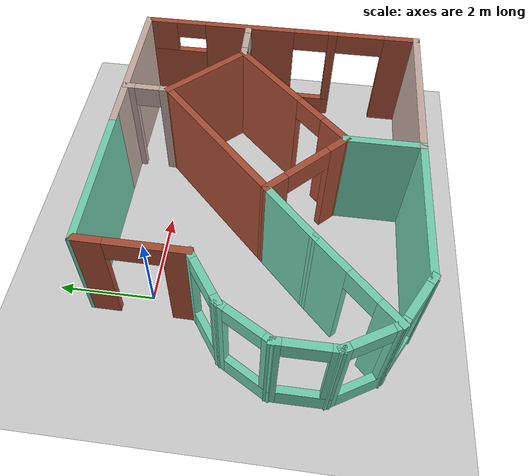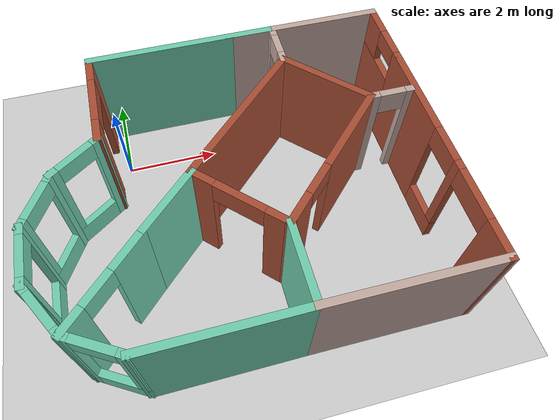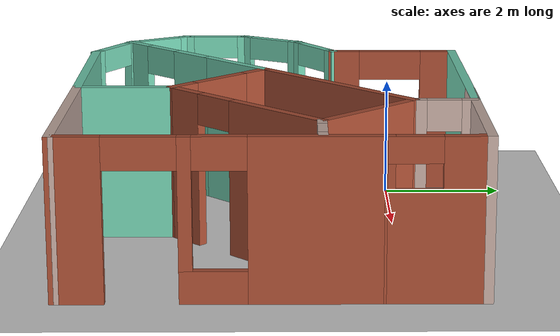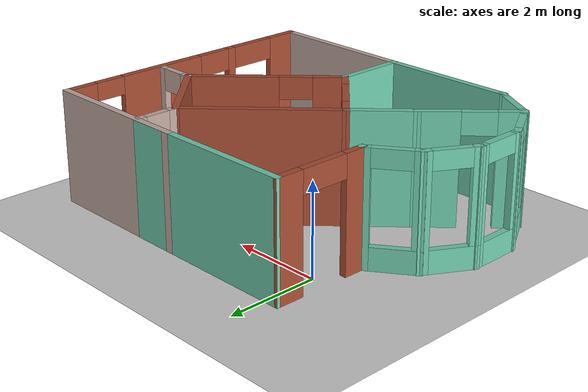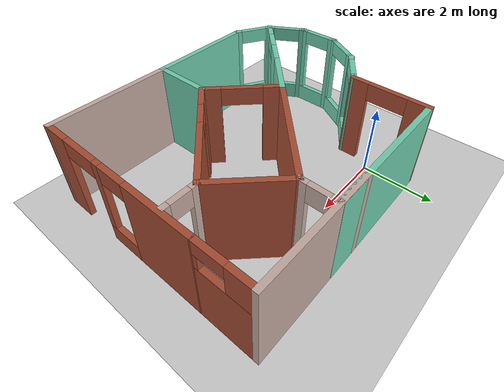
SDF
<sdf version="1.6">
 <world name="default">
  <light name="sun" type="directional">
   <pose>0 0 10 0 -0 0</pose>
   <diffuse>0.8 0.8 0.8 1</diffuse>
   <specular>0.2 0.2 0.2 1</specular>
   <attenuation>
    <range>1000</range>
    <constant>0.9</constant>
    <linear>0.01</linear>
    <quadratic>0.001</quadratic>
   </attenuation>
   <direction>-0.5 0.1 -0.9</direction>
  </light>
  <model name="ground_plane">
   <static>1</static>
   <link name="link">
    <collision name="collision">
     <geometry><plane><normal>0 0 1</normal><size>100 100</size></plane></geometry>
     <surface>
      <contact><collide_bitmask>65535</collide_bitmask></contact>
      <friction><ode><mu>100</mu><mu2>50</mu2></ode></friction>
     </surface>
    </collision>
    <visual name="visual">
     <cast_shadows>0</cast_shadows>
     <geometry><plane><normal>0 0 1</normal><size>100 100</size></plane></geometry>
     <material>
      <script><uri>file://media/materials/scripts/gazebo.material</uri><name>Gazebo/Grey</name></script>
     </material>
    </visual>
   </link>
  </model>
  <gravity>0 0 -9.8</gravity>
  <magnetic_field>6e-06 2.3e-05 -4.2e-05</magnetic_field>
  <atmosphere type="adiabatic"/>
  <physics name="default_physics" default="0" type="ode">
   <max_step_size>0.001</max_step_size>
   <real_time_factor>1</real_time_factor>
   <real_time_update_rate>1000</real_time_update_rate>
  </physics>
  <scene><ambient>0.4 0.4 0.4 1</ambient><background>0.7 0.7 0.7 1</background><shadows>1</shadows></scene>
  <audio><device>default</device></audio>
  <spherical_coordinates>
   <surface_model>EARTH_WGS84</surface_model>
   <latitude_deg>0</latitude_deg>
   <longitude_deg>0</longitude_deg>
   <elevation>0</elevation>
   <heading_deg>0</heading_deg>
  </spherical_coordinates>
  <model name="world_5">
   <pose>2 -2 0 0 0 -3.1415</pose>
   <link name="Wall_105">
    <pose>-1.90394 0.414891 0 0 -0 -2.35619</pose>
    <visual name="Wall_105_Visual_0">
     <pose>-1.36786 0 1.25 0 -0 0</pose>
     <geometry><box><size>0.764289 0.15 2.5</size></box></geometry>
     <material>
      <script><uri>file://media/materials/scripts/gazebo.material</uri><name>Gazebo/Bricks</name></script>
      <ambient>1 1 1 1</ambient>
     </material>
     <meta><layer>0</layer></meta>
    </visual>
    <collision name="Wall_105_Collision_0">
     <geometry><box><size>0.764289 0.15 2.5</size></box></geometry>
     <pose>-1.36786 0 1.25 0 -0 0</pose>
    </collision>
    <visual name="Wall_105_Visual_1">
     <pose>0.742145 0 1.25 0 -0 0</pose>
     <geometry><box><size>2.01571 0.15 2.5</size></box></geometry>
     <material>
      <script><uri>file://media/materials/scripts/gazebo.material</uri><name>Gazebo/Bricks</name></script>
      <ambient>1 1 1 1</ambient>
     </material>
     <meta><layer>0</layer></meta>
    </visual>
    <collision name="Wall_105_Collision_1">
     <geometry><box><size>2.01571 0.15 2.5</size></box></geometry>
     <pose>0.742145 0 1.25 0 -0 0</pose>
    </collision>
    <visual name="Wall_105_Visual_2">
     <pose>-0.625711 0 2.25 0 -0 0</pose>
     <geometry><box><size>0.72 0.15 0.5</size></box></geometry>
     <material>
      <script><uri>file://media/materials/scripts/gazebo.material</uri><name>Gazebo/Bricks</name></script>
      <ambient>1 1 1 1</ambient>
     </material>
     <meta><layer>0</layer></meta>
    </visual>
    <collision name="Wall_105_Collision_2">
     <geometry><box><size>0.72 0.15 0.5</size></box></geometry>
     <pose>-0.625711 0 2.25 0 -0 0</pose>
    </collision>
   </link>
   <link name="Wall_107">
    <collision name="Wall_107_Collision">
     <geometry><box><size>2.16705 0.15 2.5</size></box></geometry>
     <pose>0 0 1.25 0 -0 0</pose>
    </collision>
    <visual name="Wall_107_Visual">
     <pose>0 0 1.25 0 -0 0</pose>
     <geometry><box><size>2.16705 0.15 2.5</size></box></geometry>
     <material>
      <script><uri>file://media/materials/scripts/gazebo.material</uri><name>Gazebo/Bricks</name></script>
      <ambient>1 1 1 1</ambient>
     </material>
     <meta><layer>0</layer></meta>
    </visual>
    <pose>-2.38464 -1.49196 0 0 -0 -0.798547</pose>
   </link>
   <link name="Wall_112">
    <pose>-4.04293 0.700893 0 0 -0 1.5708</pose>
    <visual name="Wall_112_Visual_0">
     <pose>-1.44544 0 1.25 0 -0 0</pose>
     <geometry><box><size>2.10913 0.15 2.5</size></box></geometry>
     <material>
      <script><uri>file://media/materials/scripts/gazebo.material</uri><name>Gazebo/Bricks</name></script>
      <ambient>1 1 1 1</ambient>
     </material>
     <meta><layer>0</layer></meta>
    </visual>
    <collision name="Wall_112_Collision_0">
     <geometry><box><size>2.10913 0.15 2.5</size></box></geometry>
     <pose>-1.44544 0 1.25 0 -0 0</pose>
    </collision>
    <visual name="Wall_112_Visual_1">
     <pose>2.09632 0 1.25 0 -0 0</pose>
     <geometry><box><size>0.807367 0.15 2.5</size></box></geometry>
     <material>
      <script><uri>file://media/materials/scripts/gazebo.material</uri><name>Gazebo/Bricks</name></script>
      <ambient>1 1 1 1</ambient>
     </material>
     <meta><layer>0</layer></meta>
    </visual>
    <collision name="Wall_112_Collision_1">
     <geometry><box><size>0.807367 0.15 2.5</size></box></geometry>
     <pose>2.09632 0 1.25 0 -0 0</pose>
    </collision>
    <visual name="Wall_112_Visual_2">
     <pose>0.11088 0 0.25 0 -0 0</pose>
     <geometry><box><size>1.00351 0.15 0.5</size></box></geometry>
     <material>
      <script><uri>file://media/materials/scripts/gazebo.material</uri><name>Gazebo/Bricks</name></script>
      <ambient>1 1 1 1</ambient>
     </material>
     <meta><layer>0</layer></meta>
    </visual>
    <collision name="Wall_112_Collision_2">
     <geometry><box><size>1.00351 0.15 0.5</size></box></geometry>
     <pose>0.11088 0 0.25 0 -0 0</pose>
    </collision>
    <visual name="Wall_112_Visual_3">
     <pose>0.51088 0 1.5 0 -0 0</pose>
     <geometry><box><size>0.203507 0.15 2</size></box></geometry>
     <material>
      <script><uri>file://media/materials/scripts/gazebo.material</uri><name>Gazebo/Bricks</name></script>
      <ambient>1 1 1 1</ambient>
     </material>
     <meta><layer>0</layer></meta>
    </visual>
    <collision name="Wall_112_Collision_3">
     <geometry><box><size>0.203507 0.15 2</size></box></geometry>
     <pose>0.51088 0 1.5 0 -0 0</pose>
    </collision>
    <visual name="Wall_112_Visual_4">
     <pose>0.009126 0 2.25 0 -0 0</pose>
     <geometry><box><size>0.8 0.15 0.5</size></box></geometry>
     <material>
      <script><uri>file://media/materials/scripts/gazebo.material</uri><name>Gazebo/Bricks</name></script>
      <ambient>1 1 1 1</ambient>
     </material>
     <meta><layer>0</layer></meta>
    </visual>
    <collision name="Wall_112_Collision_4">
     <geometry><box><size>0.8 0.15 0.5</size></box></geometry>
     <pose>0.009126 0 2.25 0 -0 0</pose>
    </collision>
    <visual name="Wall_112_Visual_5">
     <pose>1.15263 0 2.25 0 -0 0</pose>
     <geometry><box><size>1.08 0.15 0.5</size></box></geometry>
     <material>
      <script><uri>file://media/materials/scripts/gazebo.material</uri><name>Gazebo/Bricks</name></script>
      <ambient>1 1 1 1</ambient>
     </material>
     <meta><layer>0</layer></meta>
    </visual>
    <collision name="Wall_112_Collision_5">
     <geometry><box><size>1.08 0.15 0.5</size></box></geometry>
     <pose>1.15263 0 2.25 0 -0 0</pose>
    </collision>
   </link>
   <link name="Wall_113">
    <collision name="Wall_113_Collision">
     <geometry><box><size>3.47366 0.15 2.5</size></box></geometry>
     <pose>0 0 1.25 0 -0 0</pose>
    </collision>
    <visual name="Wall_113_Visual">
     <pose>0 0 1.25 0 -0 0</pose>
     <geometry><box><size>3.47366 0.15 2.5</size></box></geometry>
     <material>
      <script><uri>file://media/materials/scripts/gazebo.material</uri><name>Gazebo/Grey</name></script>
      <ambient>0.760784 0.662745 0.627451 1</ambient>
     </material>
     <meta><layer>0</layer></meta>
    </visual>
    <pose>-2.38111 3.12514 0 0 -0 -0.000453</pose>
   </link>
   <link name="Wall_115">
    <pose>-3.51334 -0.769513 0 0 -0 3.14159</pose>
    <visual name="Wall_115_Visual_0">
     <pose>-0.367954 0 1.25 0 -0 0</pose>
     <geometry><box><size>0.264093 0.15 2.5</size></box></geometry>
     <material>
      <script><uri>file://media/materials/scripts/gazebo.material</uri><name>Gazebo/Grey</name></script>
      <ambient>0.760784 0.662745 0.627451 1</ambient>
     </material>
     <meta><layer>0</layer></meta>
    </visual>
    <collision name="Wall_115_Collision_0">
     <geometry><box><size>0.264093 0.15 2.5</size></box></geometry>
     <pose>-0.367954 0 1.25 0 -0 0</pose>
    </collision>
    <visual name="Wall_115_Visual_1">
     <pose>0.402046 0 1.25 0 -0 0</pose>
     <geometry><box><size>0.195907 0.15 2.5</size></box></geometry>
     <material>
      <script><uri>file://media/materials/scripts/gazebo.material</uri><name>Gazebo/Grey</name></script>
      <ambient>0.760784 0.662745 0.627451 1</ambient>
     </material>
     <meta><layer>0</layer></meta>
    </visual>
    <collision name="Wall_115_Collision_1">
     <geometry><box><size>0.195907 0.15 2.5</size></box></geometry>
     <pose>0.402046 0 1.25 0 -0 0</pose>
    </collision>
    <visual name="Wall_115_Visual_2">
     <pose>0.034093 0 2.25 0 -0 0</pose>
     <geometry><box><size>0.54 0.15 0.5</size></box></geometry>
     <material>
      <script><uri>file://media/materials/scripts/gazebo.material</uri><name>Gazebo/Grey</name></script>
      <ambient>0.760784 0.662745 0.627451 1</ambient>
     </material>
     <meta><layer>0</layer></meta>
    </visual>
    <collision name="Wall_115_Collision_2">
     <geometry><box><size>0.54 0.15 0.5</size></box></geometry>
     <pose>0.034093 0 2.25 0 -0 0</pose>
    </collision>
   </link>
   <link name="Wall_124">
    <collision name="Wall_124_Collision">
     <geometry><box><size>3.5 0.15 2.5</size></box></geometry>
     <pose>0 0 1.25 0 -0 0</pose>
    </collision>
    <visual name="Wall_124_Visual">
     <pose>0 0 1.25 0 -0 0</pose>
     <geometry><box><size>3.5 0.15 2.5</size></box></geometry>
     <material>
      <script><uri>file://media/materials/scripts/gazebo.material</uri><name>Gazebo/Grey</name></script>
      <ambient>0.760784 0.662745 0.627451 1</ambient>
     </material>
     <meta><layer>0</layer></meta>
    </visual>
    <pose>-2.36806 -3.17079 0 0 -0 3.14159</pose>
   </link>
   <link name="Wall_126">
    <pose>-4.04293 -2.39911 0 0 -0 -1.5708</pose>
    <visual name="Wall_126_Visual_0">
     <pose>-0.731298 0 1.25 0 -0 0</pose>
     <geometry><box><size>0.037404 0.15 2.5</size></box></geometry>
     <material>
      <script><uri>file://media/materials/scripts/gazebo.material</uri><name>Gazebo/Bricks</name></script>
      <ambient>1 1 1 1</ambient>
     </material>
     <meta><layer>0</layer></meta>
    </visual>
    <collision name="Wall_126_Collision_0">
     <geometry><box><size>0.037404 0.15 2.5</size></box></geometry>
     <pose>-0.731298 0 1.25 0 -0 0</pose>
    </collision>
    <visual name="Wall_126_Visual_1">
     <pose>0.018702 0 0.85 0 -0 0</pose>
     <geometry><box><size>1.4626 0.15 1.7</size></box></geometry>
     <material>
      <script><uri>file://media/materials/scripts/gazebo.material</uri><name>Gazebo/Bricks</name></script>
      <ambient>1 1 1 1</ambient>
     </material>
     <meta><layer>0</layer></meta>
    </visual>
    <collision name="Wall_126_Collision_1">
     <geometry><box><size>1.4626 0.15 1.7</size></box></geometry>
     <pose>0.018702 0 0.85 0 -0 0</pose>
    </collision>
    <visual name="Wall_126_Visual_2">
     <pose>0.418702 0 2.1 0 -0 0</pose>
     <geometry><box><size>0.662596 0.15 0.8</size></box></geometry>
     <material>
      <script><uri>file://media/materials/scripts/gazebo.material</uri><name>Gazebo/Bricks</name></script>
      <ambient>1 1 1 1</ambient>
     </material>
     <meta><layer>0</layer></meta>
    </visual>
    <collision name="Wall_126_Collision_2">
     <geometry><box><size>0.662596 0.15 0.8</size></box></geometry>
     <pose>0.418702 0 2.1 0 -0 0</pose>
    </collision>
    <visual name="Wall_126_Visual_3">
     <pose>-0.312596 0 2.3 0 -0 0</pose>
     <geometry><box><size>0.8 0.15 0.4</size></box></geometry>
     <material>
      <script><uri>file://media/materials/scripts/gazebo.material</uri><name>Gazebo/Bricks</name></script>
      <ambient>1 1 1 1</ambient>
     </material>
     <meta><layer>0</layer></meta>
    </visual>
    <collision name="Wall_126_Collision_3">
     <geometry><box><size>0.8 0.15 0.4</size></box></geometry>
     <pose>-0.312596 0 2.3 0 -0 0</pose>
    </collision>
   </link>
   <link name="Wall_130">
    <pose>-1.68481 -2.68244 0 0 -0 -1.57904</pose>
    <visual name="Wall_130_Visual_0">
     <pose>-0.402439 0 1.25 0 -0 0</pose>
     <geometry><box><size>0.281215 0.15 2.5</size></box></geometry>
     <material>
      <script><uri>file://media/materials/scripts/gazebo.material</uri><name>Gazebo/Grey</name></script>
      <ambient>0.760784 0.662745 0.627451 1</ambient>
     </material>
     <meta><layer>0</layer></meta>
    </visual>
    <collision name="Wall_130_Collision_0">
     <geometry><box><size>0.281215 0.15 2.5</size></box></geometry>
     <pose>-0.402439 0 1.25 0 -0 0</pose>
    </collision>
    <visual name="Wall_130_Visual_1">
     <pose>0.410608 0 1.25 0 -0 0</pose>
     <geometry><box><size>0.264879 0.15 2.5</size></box></geometry>
     <material>
      <script><uri>file://media/materials/scripts/gazebo.material</uri><name>Gazebo/Grey</name></script>
      <ambient>0.760784 0.662745 0.627451 1</ambient>
     </material>
     <meta><layer>0</layer></meta>
    </visual>
    <collision name="Wall_130_Collision_1">
     <geometry><box><size>0.264879 0.15 2.5</size></box></geometry>
     <pose>0.410608 0 1.25 0 -0 0</pose>
    </collision>
    <visual name="Wall_130_Visual_2">
     <pose>0.008168 0 2.25 0 -0 0</pose>
     <geometry><box><size>0.54 0.15 0.5</size></box></geometry>
     <material>
      <script><uri>file://media/materials/scripts/gazebo.material</uri><name>Gazebo/Grey</name></script>
      <ambient>0.760784 0.662745 0.627451 1</ambient>
     </material>
     <meta><layer>0</layer></meta>
    </visual>
    <collision name="Wall_130_Collision_2">
     <geometry><box><size>0.54 0.15 0.5</size></box></geometry>
     <pose>0.008168 0 2.25 0 -0 0</pose>
    </collision>
   </link>
   <link name="Wall_136">
    <pose>2.29896 -2.10195 0 0 -0 -1.57755</pose>
    <visual name="Wall_136_Visual_0">
     <pose>-0.8572 0 1.25 0 -0 0</pose>
     <geometry><box><size>0.544811 0.15 2.5</size></box></geometry>
     <material>
      <script><uri>file://media/materials/scripts/gazebo.material</uri><name>Gazebo/Bricks</name></script>
      <ambient>1 1 1 1</ambient>
     </material>
     <meta><layer>0</layer></meta>
    </visual>
    <collision name="Wall_136_Collision_0">
     <geometry><box><size>0.544811 0.15 2.5</size></box></geometry>
     <pose>-0.8572 0 1.25 0 -0 0</pose>
    </collision>
    <visual name="Wall_136_Visual_1">
     <pose>0.812406 0 1.25 0 -0 0</pose>
     <geometry><box><size>0.634399 0.15 2.5</size></box></geometry>
     <material>
      <script><uri>file://media/materials/scripts/gazebo.material</uri><name>Gazebo/Bricks</name></script>
      <ambient>1 1 1 1</ambient>
     </material>
     <meta><layer>0</layer></meta>
    </visual>
    <collision name="Wall_136_Collision_1">
     <geometry><box><size>0.634399 0.15 2.5</size></box></geometry>
     <pose>0.812406 0 1.25 0 -0 0</pose>
    </collision>
    <visual name="Wall_136_Visual_2">
     <pose>-0.044794 0 2.25 0 -0 0</pose>
     <geometry><box><size>1.08 0.15 0.5</size></box></geometry>
     <material>
      <script><uri>file://media/materials/scripts/gazebo.material</uri><name>Gazebo/Bricks</name></script>
      <ambient>1 1 1 1</ambient>
     </material>
     <meta><layer>0</layer></meta>
    </visual>
    <collision name="Wall_136_Collision_2">
     <geometry><box><size>1.08 0.15 0.5</size></box></geometry>
     <pose>-0.044794 0 2.25 0 -0 0</pose>
    </collision>
   </link>
   <link name="Wall_25">
    <pose>2.7625 -0.727628 0 0 -0 0.611089</pose>
    <visual name="Wall_25_Visual_0">
     <pose>-0.515835 0 1.25 0 -0 0</pose>
     <geometry><box><size>0.232894 0.15 2.5</size></box></geometry>
     <material>
      <script><uri>file://media/materials/scripts/gazebo.material</uri><name>Gazebo/Grey</name></script>
      <ambient>0.435294 0.796078 0.67451 1</ambient>
     </material>
     <meta><layer>0</layer></meta>
    </visual>
    <collision name="Wall_25_Collision_0">
     <geometry><box><size>0.232894 0.15 2.5</size></box></geometry>
     <pose>-0.515835 0 1.25 0 -0 0</pose>
    </collision>
    <visual name="Wall_25_Visual_1">
     <pose>0.116447 0 0.25 0 -0 0</pose>
     <geometry><box><size>1.03167 0.15 0.5</size></box></geometry>
     <material>
      <script><uri>file://media/materials/scripts/gazebo.material</uri><name>Gazebo/Grey</name></script>
      <ambient>0.435294 0.796078 0.67451 1</ambient>
     </material>
     <meta><layer>0</layer></meta>
    </visual>
    <collision name="Wall_25_Collision_1">
     <geometry><box><size>1.03167 0.15 0.5</size></box></geometry>
     <pose>0.116447 0 0.25 0 -0 0</pose>
    </collision>
    <visual name="Wall_25_Visual_2">
     <pose>0.516447 0 1.5 0 -0 0</pose>
     <geometry><box><size>0.231669 0.15 2</size></box></geometry>
     <material>
      <script><uri>file://media/materials/scripts/gazebo.material</uri><name>Gazebo/Grey</name></script>
      <ambient>0.435294 0.796078 0.67451 1</ambient>
     </material>
     <meta><layer>0</layer></meta>
    </visual>
    <collision name="Wall_25_Collision_2">
     <geometry><box><size>0.231669 0.15 2</size></box></geometry>
     <pose>0.516447 0 1.5 0 -0 0</pose>
    </collision>
    <visual name="Wall_25_Visual_3">
     <pose>0.000613 0 2.3 0 -0 0</pose>
     <geometry><box><size>0.8 0.15 0.4</size></box></geometry>
     <material>
      <script><uri>file://media/materials/scripts/gazebo.material</uri><name>Gazebo/Grey</name></script>
      <ambient>0.435294 0.796078 0.67451 1</ambient>
     </material>
     <meta><layer>0</layer></meta>
    </visual>
    <collision name="Wall_25_Collision_3">
     <geometry><box><size>0.8 0.15 0.4</size></box></geometry>
     <pose>0.000613 0 2.3 0 -0 0</pose>
    </collision>
   </link>
   <link name="Wall_26">
    <pose>3.49393 0.068432 0 0 -0 1.0472</pose>
    <visual name="Wall_26_Visual_0">
     <pose>-0.512343 0 1.25 0 -0 0</pose>
     <geometry><box><size>0.225314 0.15 2.5</size></box></geometry>
     <material>
      <script><uri>file://media/materials/scripts/gazebo.material</uri><name>Gazebo/Grey</name></script>
      <ambient>0.435294 0.796078 0.67451 1</ambient>
     </material>
     <meta><layer>0</layer></meta>
    </visual>
    <collision name="Wall_26_Collision_0">
     <geometry><box><size>0.225314 0.15 2.5</size></box></geometry>
     <pose>-0.512343 0 1.25 0 -0 0</pose>
    </collision>
    <visual name="Wall_26_Visual_1">
     <pose>0.112657 0 0.25 0 -0 0</pose>
     <geometry><box><size>1.02469 0.15 0.5</size></box></geometry>
     <material>
      <script><uri>file://media/materials/scripts/gazebo.material</uri><name>Gazebo/Grey</name></script>
      <ambient>0.435294 0.796078 0.67451 1</ambient>
     </material>
     <meta><layer>0</layer></meta>
    </visual>
    <collision name="Wall_26_Collision_1">
     <geometry><box><size>1.02469 0.15 0.5</size></box></geometry>
     <pose>0.112657 0 0.25 0 -0 0</pose>
    </collision>
    <visual name="Wall_26_Visual_2">
     <pose>0.512657 0 1.5 0 -0 0</pose>
     <geometry><box><size>0.224686 0.15 2</size></box></geometry>
     <material>
      <script><uri>file://media/materials/scripts/gazebo.material</uri><name>Gazebo/Grey</name></script>
      <ambient>0.435294 0.796078 0.67451 1</ambient>
     </material>
     <meta><layer>0</layer></meta>
    </visual>
    <collision name="Wall_26_Collision_2">
     <geometry><box><size>0.224686 0.15 2</size></box></geometry>
     <pose>0.512657 0 1.5 0 -0 0</pose>
    </collision>
    <visual name="Wall_26_Visual_3">
     <pose>0.000314 0 2.3 0 -0 0</pose>
     <geometry><box><size>0.8 0.15 0.4</size></box></geometry>
     <material>
      <script><uri>file://media/materials/scripts/gazebo.material</uri><name>Gazebo/Grey</name></script>
      <ambient>0.435294 0.796078 0.67451 1</ambient>
     </material>
     <meta><layer>0</layer></meta>
    </visual>
    <collision name="Wall_26_Collision_3">
     <geometry><box><size>0.8 0.15 0.4</size></box></geometry>
     <pose>0.000314 0 2.3 0 -0 0</pose>
    </collision>
   </link>
   <link name="Wall_27">
    <pose>3.76893 1.09475 0 0 -0 1.5708</pose>
    <visual name="Wall_27_Visual_0">
     <pose>-0.512979 0 1.25 0 -0 0</pose>
     <geometry><box><size>0.224041 0.15 2.5</size></box></geometry>
     <material>
      <script><uri>file://media/materials/scripts/gazebo.material</uri><name>Gazebo/Grey</name></script>
      <ambient>0.435294 0.796078 0.67451 1</ambient>
     </material>
     <meta><layer>0</layer></meta>
    </visual>
    <collision name="Wall_27_Collision_0">
     <geometry><box><size>0.224041 0.15 2.5</size></box></geometry>
     <pose>-0.512979 0 1.25 0 -0 0</pose>
    </collision>
    <visual name="Wall_27_Visual_1">
     <pose>0.112021 0 0.25 0 -0 0</pose>
     <geometry><box><size>1.02596 0.15 0.5</size></box></geometry>
     <material>
      <script><uri>file://media/materials/scripts/gazebo.material</uri><name>Gazebo/Grey</name></script>
      <ambient>0.435294 0.796078 0.67451 1</ambient>
     </material>
     <meta><layer>0</layer></meta>
    </visual>
    <collision name="Wall_27_Collision_1">
     <geometry><box><size>1.02596 0.15 0.5</size></box></geometry>
     <pose>0.112021 0 0.25 0 -0 0</pose>
    </collision>
    <visual name="Wall_27_Visual_2">
     <pose>0.512021 0 1.5 0 -0 0</pose>
     <geometry><box><size>0.225959 0.15 2</size></box></geometry>
     <material>
      <script><uri>file://media/materials/scripts/gazebo.material</uri><name>Gazebo/Grey</name></script>
      <ambient>0.435294 0.796078 0.67451 1</ambient>
     </material>
     <meta><layer>0</layer></meta>
    </visual>
    <collision name="Wall_27_Collision_2">
     <geometry><box><size>0.225959 0.15 2</size></box></geometry>
     <pose>0.512021 0 1.5 0 -0 0</pose>
    </collision>
    <visual name="Wall_27_Visual_3">
     <pose>-0.000959 0 2.3 0 -0 0</pose>
     <geometry><box><size>0.8 0.15 0.4</size></box></geometry>
     <material>
      <script><uri>file://media/materials/scripts/gazebo.material</uri><name>Gazebo/Grey</name></script>
      <ambient>0.435294 0.796078 0.67451 1</ambient>
     </material>
     <meta><layer>0</layer></meta>
    </visual>
    <collision name="Wall_27_Collision_3">
     <geometry><box><size>0.8 0.15 0.4</size></box></geometry>
     <pose>-0.000959 0 2.3 0 -0 0</pose>
    </collision>
   </link>
   <link name="Wall_29">
    <pose>3.49393 2.12106 0 0 -0 2.0944</pose>
    <visual name="Wall_29_Visual_0">
     <pose>-0.512479 0 1.25 0 -0 0</pose>
     <geometry><box><size>0.225041 0.15 2.5</size></box></geometry>
     <material>
      <script><uri>file://media/materials/scripts/gazebo.material</uri><name>Gazebo/Grey</name></script>
      <ambient>0.435294 0.796078 0.67451 1</ambient>
     </material>
     <meta><layer>0</layer></meta>
    </visual>
    <collision name="Wall_29_Collision_0">
     <geometry><box><size>0.225041 0.15 2.5</size></box></geometry>
     <pose>-0.512479 0 1.25 0 -0 0</pose>
    </collision>
    <visual name="Wall_29_Visual_1">
     <pose>0.112521 0 0.25 0 -0 0</pose>
     <geometry><box><size>1.02496 0.15 0.5</size></box></geometry>
     <material>
      <script><uri>file://media/materials/scripts/gazebo.material</uri><name>Gazebo/Grey</name></script>
      <ambient>0.435294 0.796078 0.67451 1</ambient>
     </material>
     <meta><layer>0</layer></meta>
    </visual>
    <collision name="Wall_29_Collision_1">
     <geometry><box><size>1.02496 0.15 0.5</size></box></geometry>
     <pose>0.112521 0 0.25 0 -0 0</pose>
    </collision>
    <visual name="Wall_29_Visual_2">
     <pose>0.512521 0 1.5 0 -0 0</pose>
     <geometry><box><size>0.224959 0.15 2</size></box></geometry>
     <material>
      <script><uri>file://media/materials/scripts/gazebo.material</uri><name>Gazebo/Grey</name></script>
      <ambient>0.435294 0.796078 0.67451 1</ambient>
     </material>
     <meta><layer>0</layer></meta>
    </visual>
    <collision name="Wall_29_Collision_2">
     <geometry><box><size>0.224959 0.15 2</size></box></geometry>
     <pose>0.512521 0 1.5 0 -0 0</pose>
    </collision>
    <visual name="Wall_29_Visual_3">
     <pose>4.1e-05 0 2.3 0 -0 0</pose>
     <geometry><box><size>0.8 0.15 0.4</size></box></geometry>
     <material>
      <script><uri>file://media/materials/scripts/gazebo.material</uri><name>Gazebo/Grey</name></script>
      <ambient>0.435294 0.796078 0.67451 1</ambient>
     </material>
     <meta><layer>0</layer></meta>
    </visual>
    <collision name="Wall_29_Collision_3">
     <geometry><box><size>0.8 0.15 0.4</size></box></geometry>
     <pose>4.1e-05 0 2.3 0 -0 0</pose>
    </collision>
   </link>
   <link name="Wall_30">
    <pose>2.74262 2.87237 0 0 -0 2.61799</pose>
    <visual name="Wall_30_Visual_0">
     <pose>-0.512782 0 1.25 0 -0 0</pose>
     <geometry><box><size>0.224436 0.15 2.5</size></box></geometry>
     <material>
      <script><uri>file://media/materials/scripts/gazebo.material</uri><name>Gazebo/Grey</name></script>
      <ambient>0.435294 0.796078 0.67451 1</ambient>
     </material>
     <meta><layer>0</layer></meta>
    </visual>
    <collision name="Wall_30_Collision_0">
     <geometry><box><size>0.224436 0.15 2.5</size></box></geometry>
     <pose>-0.512782 0 1.25 0 -0 0</pose>
    </collision>
    <visual name="Wall_30_Visual_1">
     <pose>0.112218 0 0.25 0 -0 0</pose>
     <geometry><box><size>1.02556 0.15 0.5</size></box></geometry>
     <material>
      <script><uri>file://media/materials/scripts/gazebo.material</uri><name>Gazebo/Grey</name></script>
      <ambient>0.435294 0.796078 0.67451 1</ambient>
     </material>
     <meta><layer>0</layer></meta>
    </visual>
    <collision name="Wall_30_Collision_1">
     <geometry><box><size>1.02556 0.15 0.5</size></box></geometry>
     <pose>0.112218 0 0.25 0 -0 0</pose>
    </collision>
    <visual name="Wall_30_Visual_2">
     <pose>0.512218 0 1.5 0 -0 0</pose>
     <geometry><box><size>0.225564 0.15 2</size></box></geometry>
     <material>
      <script><uri>file://media/materials/scripts/gazebo.material</uri><name>Gazebo/Grey</name></script>
      <ambient>0.435294 0.796078 0.67451 1</ambient>
     </material>
     <meta><layer>0</layer></meta>
    </visual>
    <collision name="Wall_30_Collision_2">
     <geometry><box><size>0.225564 0.15 2</size></box></geometry>
     <pose>0.512218 0 1.5 0 -0 0</pose>
    </collision>
    <visual name="Wall_30_Visual_3">
     <pose>-0.000564 0 2.3 0 -0 0</pose>
     <geometry><box><size>0.8 0.15 0.4</size></box></geometry>
     <material>
      <script><uri>file://media/materials/scripts/gazebo.material</uri><name>Gazebo/Grey</name></script>
      <ambient>0.435294 0.796078 0.67451 1</ambient>
     </material>
     <meta><layer>0</layer></meta>
    </visual>
    <collision name="Wall_30_Collision_3">
     <geometry><box><size>0.8 0.15 0.4</size></box></geometry>
     <pose>-0.000564 0 2.3 0 -0 0</pose>
    </collision>
   </link>
   <link name="Wall_58">
    <pose>2.47647 1.85491 0 0 -0 -2.35619</pose>
    <visual name="Wall_58_Visual_0">
     <pose>-0.829364 0 1.25 0 -0 0</pose>
     <geometry><box><size>0.591272 0.15 2.5</size></box></geometry>
     <material>
      <script><uri>file://media/materials/scripts/gazebo.material</uri><name>Gazebo/Grey</name></script>
      <ambient>0.435294 0.796078 0.67451 1</ambient>
     </material>
     <meta><layer>0</layer></meta>
    </visual>
    <collision name="Wall_58_Collision_0">
     <geometry><box><size>0.591272 0.15 2.5</size></box></geometry>
     <pose>-0.829364 0 1.25 0 -0 0</pose>
    </collision>
    <visual name="Wall_58_Visual_1">
     <pose>0.655636 0 1.25 0 -0 0</pose>
     <geometry><box><size>0.938728 0.15 2.5</size></box></geometry>
     <material>
      <script><uri>file://media/materials/scripts/gazebo.material</uri><name>Gazebo/Grey</name></script>
      <ambient>0.435294 0.796078 0.67451 1</ambient>
     </material>
     <meta><layer>0</layer></meta>
    </visual>
    <collision name="Wall_58_Collision_1">
     <geometry><box><size>0.938728 0.15 2.5</size></box></geometry>
     <pose>0.655636 0 1.25 0 -0 0</pose>
    </collision>
    <visual name="Wall_58_Visual_2">
     <pose>-0.173728 0 2.25 0 -0 0</pose>
     <geometry><box><size>0.72 0.15 0.5</size></box></geometry>
     <material>
      <script><uri>file://media/materials/scripts/gazebo.material</uri><name>Gazebo/Grey</name></script>
      <ambient>0.435294 0.796078 0.67451 1</ambient>
     </material>
     <meta><layer>0</layer></meta>
    </visual>
    <collision name="Wall_58_Collision_2">
     <geometry><box><size>0.72 0.15 0.5</size></box></geometry>
     <pose>-0.173728 0 2.25 0 -0 0</pose>
    </collision>
   </link>
   <link name="Wall_68">
    <pose>0.006904 0.86815 0 0 -0 2.35297</pose>
    <visual name="Wall_68_Visual_0">
     <pose>-0.821174 0 1.25 0 -0 0</pose>
     <geometry><box><size>0.568996 0.15 2.5</size></box></geometry>
     <material>
      <script><uri>file://media/materials/scripts/gazebo.material</uri><name>Gazebo/Bricks</name></script>
      <ambient>1 1 1 1</ambient>
     </material>
     <meta><layer>0</layer></meta>
    </visual>
    <collision name="Wall_68_Collision_0">
     <geometry><box><size>0.568996 0.15 2.5</size></box></geometry>
     <pose>-0.821174 0 1.25 0 -0 0</pose>
    </collision>
    <visual name="Wall_68_Visual_1">
     <pose>0.824498 0 1.25 0 -0 0</pose>
     <geometry><box><size>0.562347 0.15 2.5</size></box></geometry>
     <material>
      <script><uri>file://media/materials/scripts/gazebo.material</uri><name>Gazebo/Bricks</name></script>
      <ambient>1 1 1 1</ambient>
     </material>
     <meta><layer>0</layer></meta>
    </visual>
    <collision name="Wall_68_Collision_1">
     <geometry><box><size>0.562347 0.15 2.5</size></box></geometry>
     <pose>0.824498 0 1.25 0 -0 0</pose>
    </collision>
    <visual name="Wall_68_Visual_2">
     <pose>0.003325 0 2.25 0 -0 0</pose>
     <geometry><box><size>1.08 0.15 0.5</size></box></geometry>
     <material>
      <script><uri>file://media/materials/scripts/gazebo.material</uri><name>Gazebo/Bricks</name></script>
      <ambient>1 1 1 1</ambient>
     </material>
     <meta><layer>0</layer></meta>
    </visual>
    <collision name="Wall_68_Collision_2">
     <geometry><box><size>1.08 0.15 0.5</size></box></geometry>
     <pose>0.003325 0 2.25 0 -0 0</pose>
    </collision>
   </link>
   <link name="Wall_69">
    <collision name="Wall_69_Collision">
     <geometry><box><size>1.67509 0.15 2.5</size></box></geometry>
     <pose>0 0 1.25 0 -0 0</pose>
    </collision>
    <visual name="Wall_69_Visual">
     <pose>0 0 1.25 0 -0 0</pose>
     <geometry><box><size>1.67509 0.15 2.5</size></box></geometry>
     <material>
      <script><uri>file://media/materials/scripts/gazebo.material</uri><name>Gazebo/Grey</name></script>
      <ambient>0.435294 0.796078 0.67451 1</ambient>
     </material>
     <meta><layer>0</layer></meta>
    </visual>
    <pose>-0.719407 2.36184 0 0 -0 1.57063</pose>
   </link>
   <link name="Wall_72">
    <collision name="Wall_72_Collision">
     <geometry><box><size>1.54744 0.15 2.5</size></box></geometry>
     <pose>0 0 1.25 0 -0 0</pose>
    </collision>
    <visual name="Wall_72_Visual">
     <pose>0 0 1.25 0 -0 0</pose>
     <geometry><box><size>1.54744 0.15 2.5</size></box></geometry>
     <material>
      <script><uri>file://media/materials/scripts/gazebo.material</uri><name>Gazebo/Grey</name></script>
      <ambient>0.435294 0.796078 0.67451 1</ambient>
     </material>
     <meta><layer>0</layer></meta>
    </visual>
    <pose>1.23367 0.624727 0 0 -0 -2.36896</pose>
   </link>
   <link name="Wall_74">
    <collision name="Wall_74_Collision">
     <geometry><box><size>3.13567 0.15 2.5</size></box></geometry>
     <pose>0 0 1.25 0 -0 0</pose>
    </collision>
    <visual name="Wall_74_Visual">
     <pose>0 0 1.25 0 -0 0</pose>
     <geometry><box><size>3.13567 0.15 2.5</size></box></geometry>
     <material>
      <script><uri>file://media/materials/scripts/gazebo.material</uri><name>Gazebo/Grey</name></script>
      <ambient>0.435294 0.796078 0.67451 1</ambient>
     </material>
     <meta><layer>0</layer></meta>
    </visual>
    <pose>0.773512 3.13588 0 0 -0 0.007699</pose>
   </link>
   <link name="Wall_78">
    <collision name="Wall_78_Collision">
     <geometry><box><size>3.52016 0.15 2.5</size></box></geometry>
     <pose>0 0 1.25 0 -0 0</pose>
    </collision>
    <visual name="Wall_78_Visual">
     <pose>0 0 1.25 0 -0 0</pose>
     <geometry><box><size>3.52016 0.15 2.5</size></box></geometry>
     <material>
      <script><uri>file://media/materials/scripts/gazebo.material</uri><name>Gazebo/Bricks</name></script>
      <ambient>1 1 1 1</ambient>
     </material>
     <meta><layer>0</layer></meta>
    </visual>
    <pose>-0.473804 -1.0387 0 0 -0 -2.36939</pose>
   </link>
   <link name="Wall_82">
    <collision name="Wall_82_Collision">
     <geometry><box><size>4.04933 0.15 2.5</size></box></geometry>
     <pose>0 0 1.25 0 -0 0</pose>
    </collision>
    <visual name="Wall_82_Visual">
     <pose>0 0 1.25 0 -0 0</pose>
     <geometry><box><size>4.04933 0.15 2.5</size></box></geometry>
     <material>
      <script><uri>file://media/materials/scripts/gazebo.material</uri><name>Gazebo/Grey</name></script>
      <ambient>0.435294 0.796078 0.67451 1</ambient>
     </material>
     <meta><layer>0</layer></meta>
    </visual>
    <pose>0.342189 -3.16551 0 0 -0 -3.13699</pose>
   </link>
   <static>1</static>
  </model>
 </world>
</sdf>
